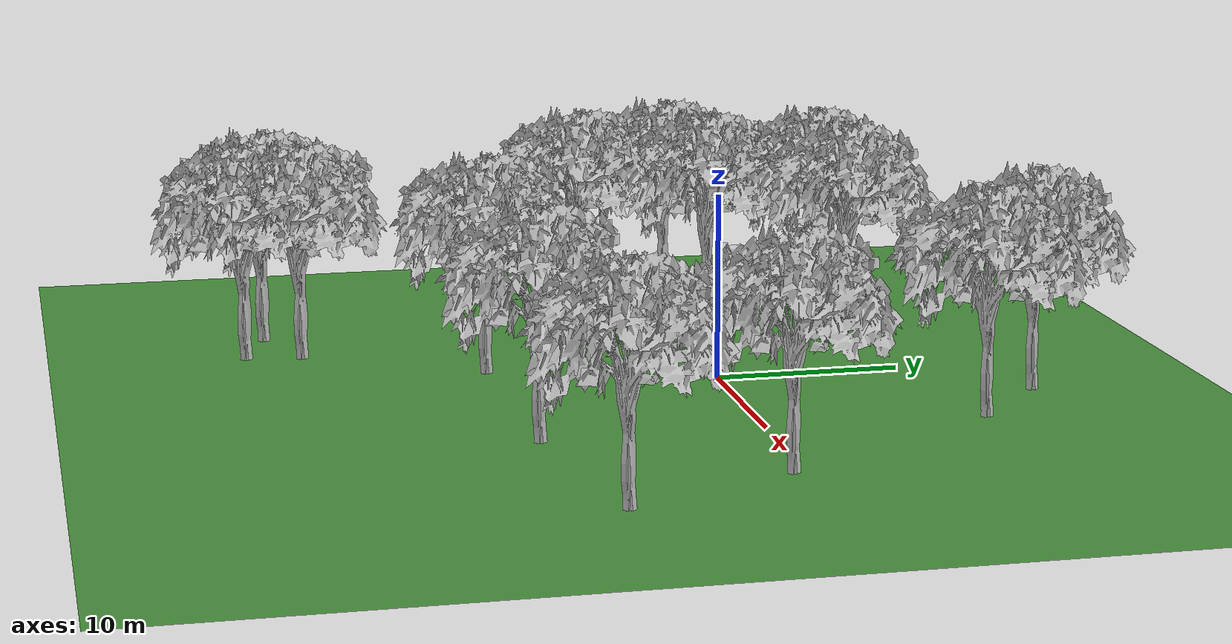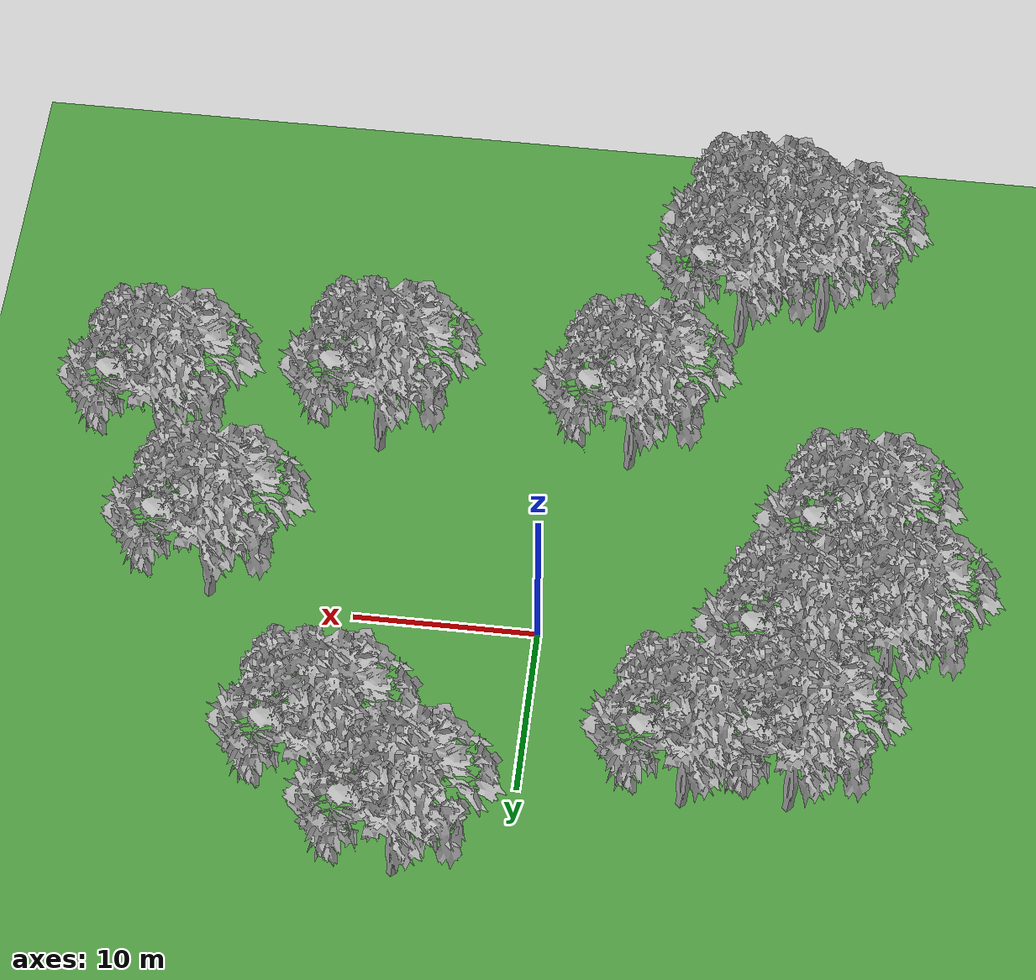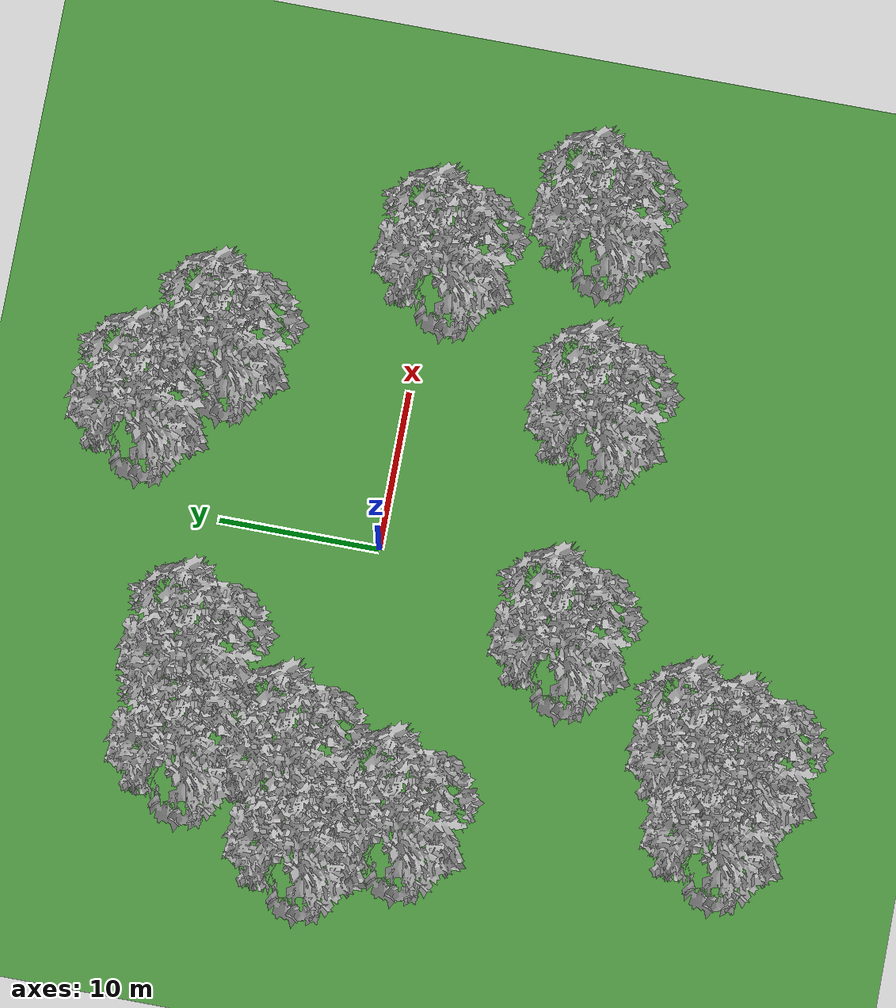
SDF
<sdf version="1.7">
 <world name="default">
  <plugin name="mrs_gazebo_static_transform_republisher_plugin" filename="libMrsGazeboCommonResources_StaticTransformRepublisher.so"/>
  <spherical_coordinates>
   <surface_model>EARTH_WGS84</surface_model>
   <latitude_deg>47.3977</latitude_deg>
   <longitude_deg>8.54559</longitude_deg>
   <elevation>0</elevation>
   <heading_deg>0</heading_deg>
  </spherical_coordinates>
  <physics name="default_physics" default="0" type="ode">
   <ode>
    <solver>
     <type>quick</type>
     <iters>50</iters>
     <sor>1</sor>
     <use_dynamic_moi_rescaling>0</use_dynamic_moi_rescaling>
    </solver>
    <constraints>
     <cfm>0</cfm>
     <erp>0.2</erp>
     <contact_max_correcting_vel>1000</contact_max_correcting_vel>
     <contact_surface_layer>0.001</contact_surface_layer>
    </constraints>
   </ode>
   <max_step_size>0.004</max_step_size>
   <real_time_factor>1</real_time_factor>
   <real_time_update_rate>250</real_time_update_rate>
  </physics>
  <scene><shadows>0</shadows><ambient>0.4 0.4 0.4 1</ambient><background>0.7 0.7 0.7 1</background></scene>
  <light name="sun" type="directional">
   <pose>250 250 600 0 -0 0</pose>
   <diffuse>0.8 0.8 0.8 1</diffuse>
   <specular>0.2 0.2 0.2 1</specular>
   <attenuation>
    <range>1000</range>
    <constant>0.9</constant>
    <linear>0.01</linear>
    <quadratic>0.001</quadratic>
   </attenuation>
   <direction>0 0 -1</direction>
   <spot><inner_angle>0</inner_angle><outer_angle>0</outer_angle><falloff>0</falloff></spot>
  </light>
  <model name="ground_plane">
   <static>1</static>
   <link name="link">
    <collision name="collision">
     <geometry><plane><normal>0 0 1</normal><size>250 250</size></plane></geometry>
     <surface><friction><ode><mu>1</mu><mu2>1</mu2></ode></friction></surface>
    </collision>
    <visual name="grass">
     <cast_shadows>0</cast_shadows>
     <geometry><plane><normal>0 0 1</normal><size>150 250</size></plane></geometry>
     <material>
      <script><uri>file://media/materials/scripts/Gazebo.material</uri><name>Gazebo/Grass</name></script>
     </material>
    </visual>
   </link>
  </model>
  <plugin name="mrs_gazebo_rviz_cam_synchronizer" filename="libMrsGazeboCommonResources_RvizCameraSynchronizer.so">
   <target_frame_id>gazebo_user_camera</target_frame_id>
   <world_origin_frame_id>uav1/gps_origin</world_origin_frame_id>
   <frame_to_follow>uav1::base_link</frame_to_follow>
  </plugin>
  <gravity>0 0 -9.8066</gravity>
  <magnetic_field>6e-06 2.3e-05 -4.2e-05</magnetic_field>
  <atmosphere type="adiabatic"/>
  <model name="Tree 2">
   <static>1</static>
   <pose>10.2387 11.5647 0 1.57079 -0 0</pose>
   <link name="link">
    <collision name="collision">
     <geometry><mesh><scale>5 5 5</scale><uri>model://tree_2/meshes/tree_2.obj</uri></mesh></geometry>
    </collision>
    <visual name="visual">
     <geometry><mesh><scale>5 5 5</scale><uri>model://tree_2/meshes/tree_2.obj</uri></mesh></geometry>
    </visual>
   </link>
  </model>
  <model name="Tree 2_0">
   <static>1</static>
   <pose>5.67009 15.6808 0 1.57079 -0 0</pose>
   <link name="link">
    <collision name="collision">
     <geometry><mesh><scale>5 5 5</scale><uri>model://tree_2/meshes/tree_2.obj</uri></mesh></geometry>
    </collision>
    <visual name="visual">
     <geometry><mesh><scale>5 5 5</scale><uri>model://tree_2/meshes/tree_2.obj</uri></mesh></geometry>
    </visual>
   </link>
  </model>
  <model name="Tree 2_clone">
   <static>1</static>
   <pose>21.7941 -9.75227 0 1.57079 -0 0</pose>
   <link name="link">
    <collision name="collision">
     <geometry><mesh><scale>5 5 5</scale><uri>model://tree_2/meshes/tree_2.obj</uri></mesh></geometry>
    </collision>
    <visual name="visual">
     <geometry><mesh><scale>5 5 5</scale><uri>model://tree_2/meshes/tree_2.obj</uri></mesh></geometry>
    </visual>
   </link>
  </model>
  <model name="Tree 2_clone_clone">
   <static>1</static>
   <pose>10.0083 -11.6513 0 1.57079 -0 0</pose>
   <link name="link">
    <collision name="collision">
     <geometry><mesh><scale>5 5 5</scale><uri>model://tree_2/meshes/tree_2.obj</uri></mesh></geometry>
    </collision>
    <visual name="visual">
     <geometry><mesh><scale>5 5 5</scale><uri>model://tree_2/meshes/tree_2.obj</uri></mesh></geometry>
    </visual>
   </link>
  </model>
  <model name="Tree 2_clone_clone_clone">
   <static>1</static>
   <pose>17.8127 -0.803711 0 1.57079 -0 0</pose>
   <link name="link">
    <collision name="collision">
     <geometry><mesh><scale>5 5 5</scale><uri>model://tree_2/meshes/tree_2.obj</uri></mesh></geometry>
    </collision>
    <visual name="visual">
     <geometry><mesh><scale>5 5 5</scale><uri>model://tree_2/meshes/tree_2.obj</uri></mesh></geometry>
    </visual>
   </link>
  </model>
  <model name="Tree 2_1">
   <static>1</static>
   <pose>-8.76193 9.78254 0 1.57079 -0 0</pose>
   <link name="link">
    <collision name="collision">
     <geometry><mesh><scale>5 5 5</scale><uri>model://tree_2/meshes/tree_2.obj</uri></mesh></geometry>
    </collision>
    <visual name="visual">
     <geometry><mesh><scale>5 5 5</scale><uri>model://tree_2/meshes/tree_2.obj</uri></mesh></geometry>
    </visual>
   </link>
  </model>
  <model name="Tree 2_1_clone">
   <static>1</static>
   <pose>-14.3209 9.38032 0 1.57079 -0 0</pose>
   <link name="link">
    <collision name="collision">
     <geometry><mesh><scale>5 5 5</scale><uri>model://tree_2/meshes/tree_2.obj</uri></mesh></geometry>
    </collision>
    <visual name="visual">
     <geometry><mesh><scale>5 5 5</scale><uri>model://tree_2/meshes/tree_2.obj</uri></mesh></geometry>
    </visual>
   </link>
  </model>
  <model name="Tree 2_1_clone_0">
   <static>1</static>
   <pose>-13.8121 2.85058 0 1.57079 -0 0</pose>
   <link name="link">
    <collision name="collision">
     <geometry><mesh><scale>5 5 5</scale><uri>model://tree_2/meshes/tree_2.obj</uri></mesh></geometry>
    </collision>
    <visual name="visual">
     <geometry><mesh><scale>5 5 5</scale><uri>model://tree_2/meshes/tree_2.obj</uri></mesh></geometry>
    </visual>
   </link>
  </model>
  <model name="Tree 2_1_clone_1">
   <static>1</static>
   <pose>-18.6931 1.36904 0 1.57079 -0 0</pose>
   <link name="link">
    <collision name="collision">
     <geometry><mesh><scale>5 5 5</scale><uri>model://tree_2/meshes/tree_2.obj</uri></mesh></geometry>
    </collision>
    <visual name="visual">
     <geometry><mesh><scale>5 5 5</scale><uri>model://tree_2/meshes/tree_2.obj</uri></mesh></geometry>
    </visual>
   </link>
  </model>
  <model name="Tree 2_1_clone_2">
   <static>1</static>
   <pose>-16.4472 -4.20593 0 1.57079 -0 0</pose>
   <link name="link">
    <collision name="collision">
     <geometry><mesh><scale>5 5 5</scale><uri>model://tree_2/meshes/tree_2.obj</uri></mesh></geometry>
    </collision>
    <visual name="visual">
     <geometry><mesh><scale>5 5 5</scale><uri>model://tree_2/meshes/tree_2.obj</uri></mesh></geometry>
    </visual>
   </link>
  </model>
  <model name="Tree 2_1_clone_0_clone">
   <static>1</static>
   <pose>-9.13468 -21.3035 0 1.57079 -0 0</pose>
   <link name="link">
    <collision name="collision">
     <geometry><mesh><scale>5 5 5</scale><uri>model://tree_2/meshes/tree_2.obj</uri></mesh></geometry>
    </collision>
    <visual name="visual">
     <geometry><mesh><scale>5 5 5</scale><uri>model://tree_2/meshes/tree_2.obj</uri></mesh></geometry>
    </visual>
   </link>
  </model>
  <model name="Tree 2_1_clone_0_clone_clone">
   <static>1</static>
   <pose>-13.5786 -22.9769 0 1.57079 -0 0</pose>
   <link name="link">
    <collision name="collision">
     <geometry><mesh><scale>5 5 5</scale><uri>model://tree_2/meshes/tree_2.obj</uri></mesh></geometry>
    </collision>
    <visual name="visual">
     <geometry><mesh><scale>5 5 5</scale><uri>model://tree_2/meshes/tree_2.obj</uri></mesh></geometry>
    </visual>
   </link>
  </model>
  <model name="Tree 2_1_clone_0_clone_clone_clone">
   <static>1</static>
   <pose>-9.59812 -24.3317 0 1.57079 -0 0</pose>
   <link name="link">
    <collision name="collision">
     <geometry><mesh><scale>5 5 5</scale><uri>model://tree_2/meshes/tree_2.obj</uri></mesh></geometry>
    </collision>
    <visual name="visual">
     <geometry><mesh><scale>5 5 5</scale><uri>model://tree_2/meshes/tree_2.obj</uri></mesh></geometry>
    </visual>
   </link>
  </model>
  <model name="Tree 2_clone_clone_clone_0">
   <static>1</static>
   <pose>-3.84896 -11.9443 0 1.57079 -0 0</pose>
   <link name="link">
    <collision name="collision">
     <geometry><mesh><scale>5 5 5</scale><uri>model://tree_2/meshes/tree_2.obj</uri></mesh></geometry>
    </collision>
    <visual name="visual">
     <geometry><mesh><scale>5 5 5</scale><uri>model://tree_2/meshes/tree_2.obj</uri></mesh></geometry>
    </visual>
   </link>
  </model>
 </world>
</sdf>
